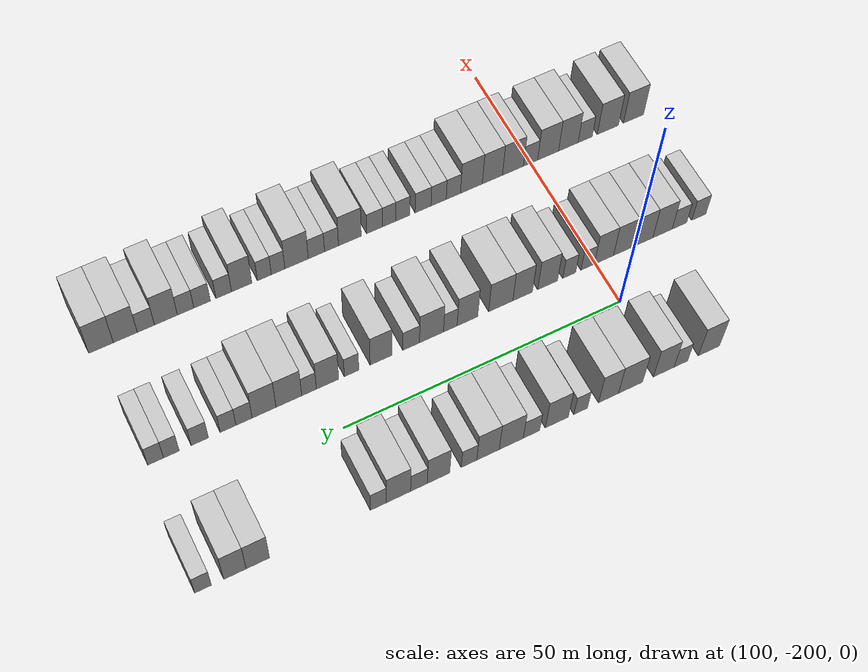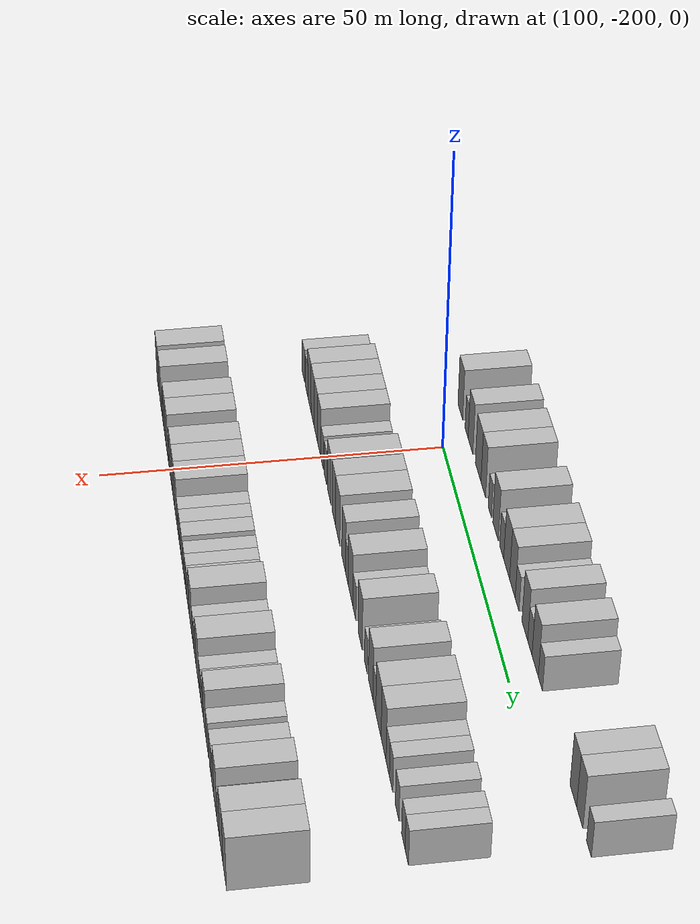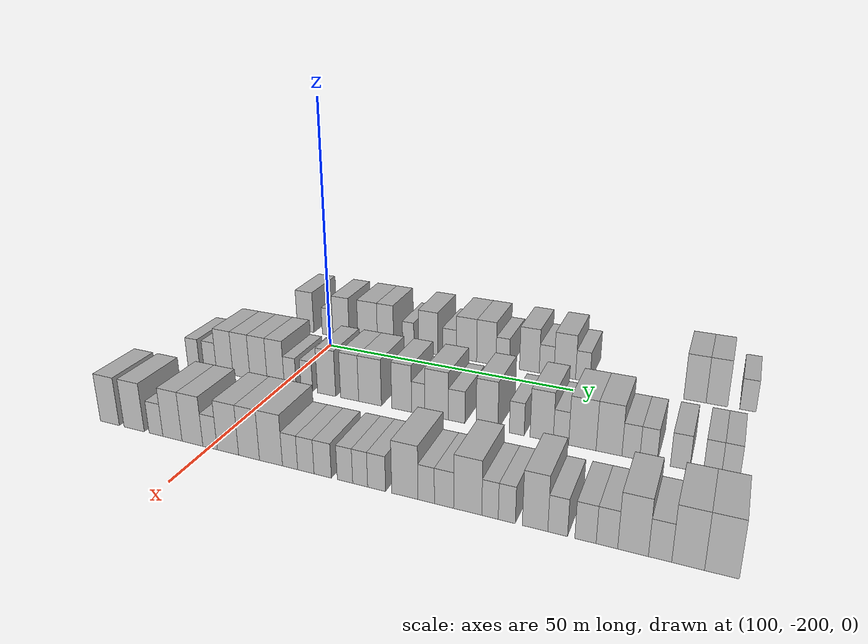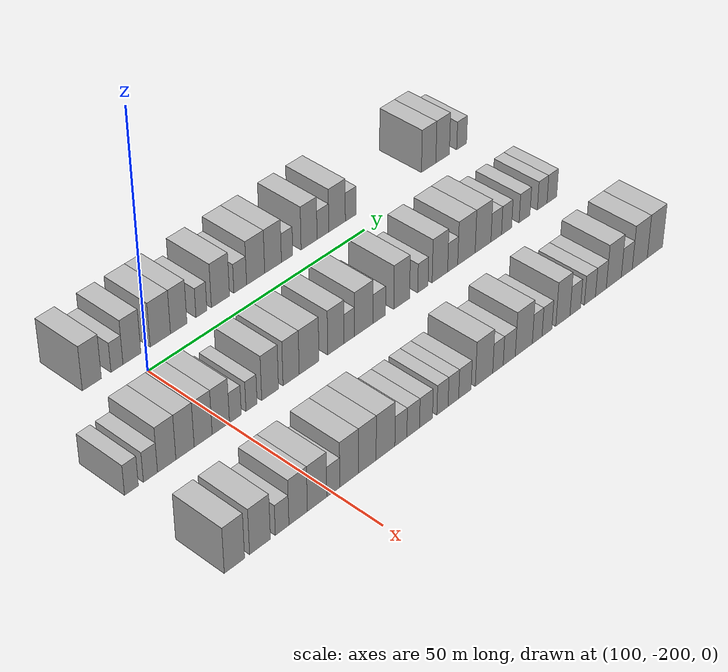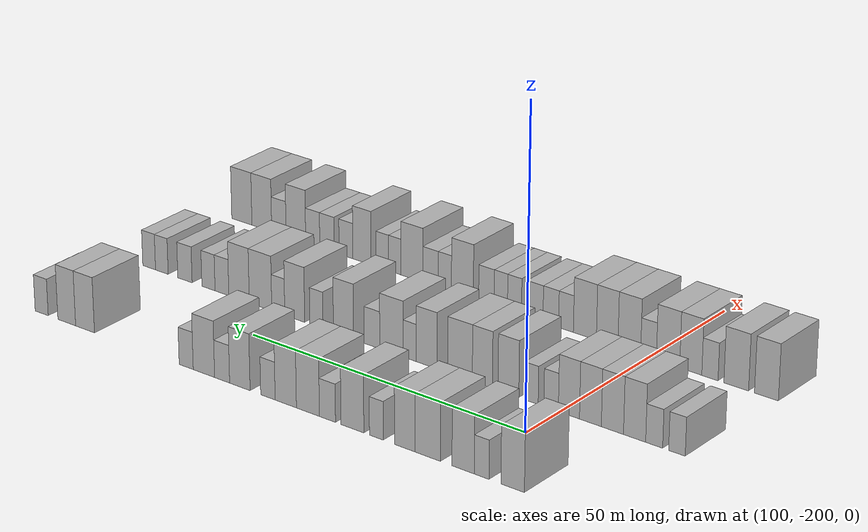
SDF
<sdf version="1.6">
 <world name="default">
  <model name="building_583">
   <static>1</static>
   <pose>91.0000 -208.1461 0 0.000000 0.000000 0.000000</pose>
   <link name="link">
    <pose>0 0 4.50 0 0 0</pose>
    <collision name="collision"><geometry><box><size>10.0000 3.9610 9.0000</size></box></geometry></collision>
    <visual name="visual">
     <cast_shadows>0</cast_shadows>
     <geometry><box><size>10.0000 3.9610 9.0000</size></box></geometry>
     <material>
      <script>
       <uri>model://HANNAS_wall/materials/scripts</uri>
       <uri>model://HANNAS_wall/materials/textures</uri>
       <name>vrc/HANNAS_wall</name>
      </script>
     </material>
    </visual>
   </link>
  </model>
  <model name="building_584">
   <static>1</static>
   <pose>91.0000 -202.9026 0 0.000000 0.000000 0.000000</pose>
   <link name="link">
    <pose>0 0 3.00 0 0 0</pose>
    <collision name="collision"><geometry><box><size>10.0000 2.5260 6.0000</size></box></geometry></collision>
    <visual name="visual">
     <cast_shadows>0</cast_shadows>
     <geometry><box><size>10.0000 2.5260 6.0000</size></box></geometry>
     <material>
      <script>
       <uri>model://HANNAS_wall/materials/scripts</uri>
       <uri>model://HANNAS_wall/materials/textures</uri>
       <name>vrc/HANNAS_wall</name>
      </script>
     </material>
    </visual>
   </link>
  </model>
  <model name="building_585">
   <static>1</static>
   <pose>91.0000 -199.7312 0 0.000000 0.000000 0.000000</pose>
   <link name="link">
    <pose>0 0 4.50 0 0 0</pose>
    <collision name="collision"><geometry><box><size>10.0000 3.8168 9.0000</size></box></geometry></collision>
    <visual name="visual">
     <cast_shadows>0</cast_shadows>
     <geometry><box><size>10.0000 3.8168 9.0000</size></box></geometry>
     <material>
      <script>
       <uri>model://HANNAS_wall/materials/scripts</uri>
       <uri>model://HANNAS_wall/materials/textures</uri>
       <name>vrc/HANNAS_wall</name>
      </script>
     </material>
    </visual>
   </link>
  </model>
  <model name="building_586">
   <static>1</static>
   <pose>91.0000 -193.6123 0 0.000000 0.000000 0.000000</pose>
   <link name="link">
    <pose>0 0 4.50 0 0 0</pose>
    <collision name="collision"><geometry><box><size>10.0000 4.4212 9.0000</size></box></geometry></collision>
    <visual name="visual">
     <cast_shadows>0</cast_shadows>
     <geometry><box><size>10.0000 4.4212 9.0000</size></box></geometry>
     <material>
      <script>
       <uri>model://HANNAS_wall/materials/scripts</uri>
       <uri>model://HANNAS_wall/materials/textures</uri>
       <name>vrc/HANNAS_wall</name>
      </script>
     </material>
    </visual>
   </link>
  </model>
  <model name="building_587">
   <static>1</static>
   <pose>91.0000 -189.5889 0 0.000000 0.000000 0.000000</pose>
   <link name="link">
    <pose>0 0 4.50 0 0 0</pose>
    <collision name="collision"><geometry><box><size>10.0000 3.6256 9.0000</size></box></geometry></collision>
    <visual name="visual">
     <cast_shadows>0</cast_shadows>
     <geometry><box><size>10.0000 3.6256 9.0000</size></box></geometry>
     <material>
      <script>
       <uri>model://HANNAS_wall/materials/scripts</uri>
       <uri>model://HANNAS_wall/materials/textures</uri>
       <name>vrc/HANNAS_wall</name>
      </script>
     </material>
    </visual>
   </link>
  </model>
  <model name="building_588">
   <static>1</static>
   <pose>91.0000 -184.5486 0 0.000000 0.000000 0.000000</pose>
   <link name="link">
    <pose>0 0 3.00 0 0 0</pose>
    <collision name="collision"><geometry><box><size>10.0000 2.4551 6.0000</size></box></geometry></collision>
    <visual name="visual">
     <cast_shadows>0</cast_shadows>
     <geometry><box><size>10.0000 2.4551 6.0000</size></box></geometry>
     <material>
      <script>
       <uri>model://HANNAS_wall/materials/scripts</uri>
       <uri>model://HANNAS_wall/materials/textures</uri>
       <name>vrc/HANNAS_wall</name>
      </script>
     </material>
    </visual>
   </link>
  </model>
  <model name="building_589">
   <static>1</static>
   <pose>91.0000 -180.2605 0 0.000000 0.000000 0.000000</pose>
   <link name="link">
    <pose>0 0 4.50 0 0 0</pose>
    <collision name="collision"><geometry><box><size>10.0000 4.1210 9.0000</size></box></geometry></collision>
    <visual name="visual">
     <cast_shadows>0</cast_shadows>
     <geometry><box><size>10.0000 4.1210 9.0000</size></box></geometry>
     <material>
      <script>
       <uri>model://HANNAS_wall/materials/scripts</uri>
       <uri>model://HANNAS_wall/materials/textures</uri>
       <name>vrc/HANNAS_wall</name>
      </script>
     </material>
    </visual>
   </link>
  </model>
  <model name="building_590">
   <static>1</static>
   <pose>91.0000 -175.7351 0 0.000000 0.000000 0.000000</pose>
   <link name="link">
    <pose>0 0 3.00 0 0 0</pose>
    <collision name="collision"><geometry><box><size>10.0000 2.9299 6.0000</size></box></geometry></collision>
    <visual name="visual">
     <cast_shadows>0</cast_shadows>
     <geometry><box><size>10.0000 2.9299 6.0000</size></box></geometry>
     <material>
      <script>
       <uri>model://HANNAS_wall/materials/scripts</uri>
       <uri>model://HANNAS_wall/materials/textures</uri>
       <name>vrc/HANNAS_wall</name>
      </script>
     </material>
    </visual>
   </link>
  </model>
  <model name="building_591">
   <static>1</static>
   <pose>91.0000 -172.1573 0 0.000000 0.000000 0.000000</pose>
   <link name="link">
    <pose>0 0 4.50 0 0 0</pose>
    <collision name="collision"><geometry><box><size>10.0000 4.2256 9.0000</size></box></geometry></collision>
    <visual name="visual">
     <cast_shadows>0</cast_shadows>
     <geometry><box><size>10.0000 4.2256 9.0000</size></box></geometry>
     <material>
      <script>
       <uri>model://HANNAS_wall/materials/scripts</uri>
       <uri>model://HANNAS_wall/materials/textures</uri>
       <name>vrc/HANNAS_wall</name>
      </script>
     </material>
    </visual>
   </link>
  </model>
  <model name="building_592">
   <static>1</static>
   <pose>91.0000 -168.0705 0 0.000000 0.000000 0.000000</pose>
   <link name="link">
    <pose>0 0 4.50 0 0 0</pose>
    <collision name="collision"><geometry><box><size>10.0000 3.9478 9.0000</size></box></geometry></collision>
    <visual name="visual">
     <cast_shadows>0</cast_shadows>
     <geometry><box><size>10.0000 3.9478 9.0000</size></box></geometry>
     <material>
      <script>
       <uri>model://HANNAS_wall/materials/scripts</uri>
       <uri>model://HANNAS_wall/materials/textures</uri>
       <name>vrc/HANNAS_wall</name>
      </script>
     </material>
    </visual>
   </link>
  </model>
  <model name="building_593">
   <static>1</static>
   <pose>91.0000 -164.7455 0 0.000000 0.000000 0.000000</pose>
   <link name="link">
    <pose>0 0 3.00 0 0 0</pose>
    <collision name="collision"><geometry><box><size>10.0000 2.7022 6.0000</size></box></geometry></collision>
    <visual name="visual">
     <cast_shadows>0</cast_shadows>
     <geometry><box><size>10.0000 2.7022 6.0000</size></box></geometry>
     <material>
      <script>
       <uri>model://HANNAS_wall/materials/scripts</uri>
       <uri>model://HANNAS_wall/materials/textures</uri>
       <name>vrc/HANNAS_wall</name>
      </script>
     </material>
    </visual>
   </link>
  </model>
  <model name="building_594">
   <static>1</static>
   <pose>91.0000 -159.4563 0 0.000000 0.000000 0.000000</pose>
   <link name="link">
    <pose>0 0 4.50 0 0 0</pose>
    <collision name="collision"><geometry><box><size>10.0000 3.8762 9.0000</size></box></geometry></collision>
    <visual name="visual">
     <cast_shadows>0</cast_shadows>
     <geometry><box><size>10.0000 3.8762 9.0000</size></box></geometry>
     <material>
      <script>
       <uri>model://HANNAS_wall/materials/scripts</uri>
       <uri>model://HANNAS_wall/materials/textures</uri>
       <name>vrc/HANNAS_wall</name>
      </script>
     </material>
    </visual>
   </link>
  </model>
  <model name="building_595">
   <static>1</static>
   <pose>91.0000 -156.0876 0 0.000000 0.000000 0.000000</pose>
   <link name="link">
    <pose>0 0 3.00 0 0 0</pose>
    <collision name="collision"><geometry><box><size>10.0000 2.8612 6.0000</size></box></geometry></collision>
    <visual name="visual">
     <cast_shadows>0</cast_shadows>
     <geometry><box><size>10.0000 2.8612 6.0000</size></box></geometry>
     <material>
      <script>
       <uri>model://HANNAS_wall/materials/scripts</uri>
       <uri>model://HANNAS_wall/materials/textures</uri>
       <name>vrc/HANNAS_wall</name>
      </script>
     </material>
    </visual>
   </link>
  </model>
  <model name="building_596">
   <static>1</static>
   <pose>91.0000 -152.5955 0 0.000000 0.000000 0.000000</pose>
   <link name="link">
    <pose>0 0 4.50 0 0 0</pose>
    <collision name="collision"><geometry><box><size>10.0000 4.1229 9.0000</size></box></geometry></collision>
    <visual name="visual">
     <cast_shadows>0</cast_shadows>
     <geometry><box><size>10.0000 4.1229 9.0000</size></box></geometry>
     <material>
      <script>
       <uri>model://HANNAS_wall/materials/scripts</uri>
       <uri>model://HANNAS_wall/materials/textures</uri>
       <name>vrc/HANNAS_wall</name>
      </script>
     </material>
    </visual>
   </link>
  </model>
  <model name="building_597">
   <static>1</static>
   <pose>91.0000 -149.1707 0 0.000000 0.000000 0.000000</pose>
   <link name="link">
    <pose>0 0 3.00 0 0 0</pose>
    <collision name="collision"><geometry><box><size>10.0000 2.7266 6.0000</size></box></geometry></collision>
    <visual name="visual">
     <cast_shadows>0</cast_shadows>
     <geometry><box><size>10.0000 2.7266 6.0000</size></box></geometry>
     <material>
      <script>
       <uri>model://HANNAS_wall/materials/scripts</uri>
       <uri>model://HANNAS_wall/materials/textures</uri>
       <name>vrc/HANNAS_wall</name>
      </script>
     </material>
    </visual>
   </link>
  </model>
  <model name="building_598">
   <static>1</static>
   <pose>91.0000 -129.0493 0 0.000000 0.000000 0.000000</pose>
   <link name="link">
    <pose>0 0 4.50 0 0 0</pose>
    <collision name="collision"><geometry><box><size>10.0000 3.8388 9.0000</size></box></geometry></collision>
    <visual name="visual">
     <cast_shadows>0</cast_shadows>
     <geometry><box><size>10.0000 3.8388 9.0000</size></box></geometry>
     <material>
      <script>
       <uri>model://HANNAS_wall/materials/scripts</uri>
       <uri>model://HANNAS_wall/materials/textures</uri>
       <name>vrc/HANNAS_wall</name>
      </script>
     </material>
    </visual>
   </link>
  </model>
  <model name="building_599">
   <static>1</static>
   <pose>91.0000 -125.3104 0 0.000000 0.000000 0.000000</pose>
   <link name="link">
    <pose>0 0 4.50 0 0 0</pose>
    <collision name="collision"><geometry><box><size>10.0000 3.6390 9.0000</size></box></geometry></collision>
    <visual name="visual">
     <cast_shadows>0</cast_shadows>
     <geometry><box><size>10.0000 3.6390 9.0000</size></box></geometry>
     <material>
      <script>
       <uri>model://HANNAS_wall/materials/scripts</uri>
       <uri>model://HANNAS_wall/materials/textures</uri>
       <name>vrc/HANNAS_wall</name>
      </script>
     </material>
    </visual>
   </link>
  </model>
  <model name="building_600">
   <static>1</static>
   <pose>91.0000 -120.1404 0 0.000000 0.000000 0.000000</pose>
   <link name="link">
    <pose>0 0 3.00 0 0 0</pose>
    <collision name="collision"><geometry><box><size>10.0000 2.7010 6.0000</size></box></geometry></collision>
    <visual name="visual">
     <cast_shadows>0</cast_shadows>
     <geometry><box><size>10.0000 2.7010 6.0000</size></box></geometry>
     <material>
      <script>
       <uri>model://HANNAS_wall/materials/scripts</uri>
       <uri>model://HANNAS_wall/materials/textures</uri>
       <name>vrc/HANNAS_wall</name>
      </script>
     </material>
    </visual>
   </link>
  </model>
  <model name="building_762">
   <static>1</static>
   <pose>113.0000 -219.8826 0 0.000000 0.000000 0.000000</pose>
   <link name="link">
    <pose>0 0 3.00 0 0 0</pose>
    <collision name="collision"><geometry><box><size>10.0000 2.7496 6.0000</size></box></geometry></collision>
    <visual name="visual">
     <cast_shadows>0</cast_shadows>
     <geometry><box><size>10.0000 2.7496 6.0000</size></box></geometry>
     <material>
      <script>
       <uri>model://HANNAS_wall/materials/scripts</uri>
       <uri>model://HANNAS_wall/materials/textures</uri>
       <name>vrc/HANNAS_wall</name>
      </script>
     </material>
    </visual>
   </link>
  </model>
  <model name="building_763">
   <static>1</static>
   <pose>113.0000 -216.0858 0 0.000000 0.000000 0.000000</pose>
   <link name="link">
    <pose>0 0 3.00 0 0 0</pose>
    <collision name="collision"><geometry><box><size>10.0000 2.8440 6.0000</size></box></geometry></collision>
    <visual name="visual">
     <cast_shadows>0</cast_shadows>
     <geometry><box><size>10.0000 2.8440 6.0000</size></box></geometry>
     <material>
      <script>
       <uri>model://HANNAS_wall/materials/scripts</uri>
       <uri>model://HANNAS_wall/materials/textures</uri>
       <name>vrc/HANNAS_wall</name>
      </script>
     </material>
    </visual>
   </link>
  </model>
  <model name="building_764">
   <static>1</static>
   <pose>113.0000 -212.7943 0 0.000000 0.000000 0.000000</pose>
   <link name="link">
    <pose>0 0 4.50 0 0 0</pose>
    <collision name="collision"><geometry><box><size>10.0000 3.7390 9.0000</size></box></geometry></collision>
    <visual name="visual">
     <cast_shadows>0</cast_shadows>
     <geometry><box><size>10.0000 3.7390 9.0000</size></box></geometry>
     <material>
      <script>
       <uri>model://HANNAS_wall/materials/scripts</uri>
       <uri>model://HANNAS_wall/materials/textures</uri>
       <name>vrc/HANNAS_wall</name>
      </script>
     </material>
    </visual>
   </link>
  </model>
  <model name="building_765">
   <static>1</static>
   <pose>113.0000 -209.0377 0 0.000000 0.000000 0.000000</pose>
   <link name="link">
    <pose>0 0 4.50 0 0 0</pose>
    <collision name="collision"><geometry><box><size>10.0000 3.7743 9.0000</size></box></geometry></collision>
    <visual name="visual">
     <cast_shadows>0</cast_shadows>
     <geometry><box><size>10.0000 3.7743 9.0000</size></box></geometry>
     <material>
      <script>
       <uri>model://HANNAS_wall/materials/scripts</uri>
       <uri>model://HANNAS_wall/materials/textures</uri>
       <name>vrc/HANNAS_wall</name>
      </script>
     </material>
    </visual>
   </link>
  </model>
  <model name="building_766">
   <static>1</static>
   <pose>113.0000 -205.2724 0 0.000000 0.000000 0.000000</pose>
   <link name="link">
    <pose>0 0 4.50 0 0 0</pose>
    <collision name="collision"><geometry><box><size>10.0000 3.7562 9.0000</size></box></geometry></collision>
    <visual name="visual">
     <cast_shadows>0</cast_shadows>
     <geometry><box><size>10.0000 3.7562 9.0000</size></box></geometry>
     <material>
      <script>
       <uri>model://HANNAS_wall/materials/scripts</uri>
       <uri>model://HANNAS_wall/materials/textures</uri>
       <name>vrc/HANNAS_wall</name>
      </script>
     </material>
    </visual>
   </link>
  </model>
  <model name="building_767">
   <static>1</static>
   <pose>113.0000 -201.5636 0 0.000000 0.000000 0.000000</pose>
   <link name="link">
    <pose>0 0 4.50 0 0 0</pose>
    <collision name="collision"><geometry><box><size>10.0000 3.6614 9.0000</size></box></geometry></collision>
    <visual name="visual">
     <cast_shadows>0</cast_shadows>
     <geometry><box><size>10.0000 3.6614 9.0000</size></box></geometry>
     <material>
      <script>
       <uri>model://HANNAS_wall/materials/scripts</uri>
       <uri>model://HANNAS_wall/materials/textures</uri>
       <name>vrc/HANNAS_wall</name>
      </script>
     </material>
    </visual>
   </link>
  </model>
  <model name="building_768">
   <static>1</static>
   <pose>113.0000 -198.4670 0 0.000000 0.000000 0.000000</pose>
   <link name="link">
    <pose>0 0 3.00 0 0 0</pose>
    <collision name="collision"><geometry><box><size>10.0000 2.5318 6.0000</size></box></geometry></collision>
    <visual name="visual">
     <cast_shadows>0</cast_shadows>
     <geometry><box><size>10.0000 2.5318 6.0000</size></box></geometry>
     <material>
      <script>
       <uri>model://HANNAS_wall/materials/scripts</uri>
       <uri>model://HANNAS_wall/materials/textures</uri>
       <name>vrc/HANNAS_wall</name>
      </script>
     </material>
    </visual>
   </link>
  </model>
  <model name="building_769">
   <static>1</static>
   <pose>113.0000 -194.9916 0 0.000000 0.000000 0.000000</pose>
   <link name="link">
    <pose>0 0 3.00 0 0 0</pose>
    <collision name="collision"><geometry><box><size>10.0000 2.4190 6.0000</size></box></geometry></collision>
    <visual name="visual">
     <cast_shadows>0</cast_shadows>
     <geometry><box><size>10.0000 2.4190 6.0000</size></box></geometry>
     <material>
      <script>
       <uri>model://HANNAS_wall/materials/scripts</uri>
       <uri>model://HANNAS_wall/materials/textures</uri>
       <name>vrc/HANNAS_wall</name>
      </script>
     </material>
    </visual>
   </link>
  </model>
  <model name="building_770">
   <static>1</static>
   <pose>113.0000 -190.9341 0 0.000000 0.000000 0.000000</pose>
   <link name="link">
    <pose>0 0 4.50 0 0 0</pose>
    <collision name="collision"><geometry><box><size>10.0000 3.6961 9.0000</size></box></geometry></collision>
    <visual name="visual">
     <cast_shadows>0</cast_shadows>
     <geometry><box><size>10.0000 3.6961 9.0000</size></box></geometry>
     <material>
      <script>
       <uri>model://HANNAS_wall/materials/scripts</uri>
       <uri>model://HANNAS_wall/materials/textures</uri>
       <name>vrc/HANNAS_wall</name>
      </script>
     </material>
    </visual>
   </link>
  </model>
  <model name="building_771">
   <static>1</static>
   <pose>113.0000 -186.2801 0 0.000000 0.000000 0.000000</pose>
   <link name="link">
    <pose>0 0 4.50 0 0 0</pose>
    <collision name="collision"><geometry><box><size>10.0000 3.6117 9.0000</size></box></geometry></collision>
    <visual name="visual">
     <cast_shadows>0</cast_shadows>
     <geometry><box><size>10.0000 3.6117 9.0000</size></box></geometry>
     <material>
      <script>
       <uri>model://HANNAS_wall/materials/scripts</uri>
       <uri>model://HANNAS_wall/materials/textures</uri>
       <name>vrc/HANNAS_wall</name>
      </script>
     </material>
    </visual>
   </link>
  </model>
  <model name="building_772">
   <static>1</static>
   <pose>113.0000 -182.2433 0 0.000000 0.000000 0.000000</pose>
   <link name="link">
    <pose>0 0 4.50 0 0 0</pose>
    <collision name="collision"><geometry><box><size>10.0000 4.4620 9.0000</size></box></geometry></collision>
    <visual name="visual">
     <cast_shadows>0</cast_shadows>
     <geometry><box><size>10.0000 4.4620 9.0000</size></box></geometry>
     <material>
      <script>
       <uri>model://HANNAS_wall/materials/scripts</uri>
       <uri>model://HANNAS_wall/materials/textures</uri>
       <name>vrc/HANNAS_wall</name>
      </script>
     </material>
    </visual>
   </link>
  </model>
  <model name="building_773">
   <static>1</static>
   <pose>113.0000 -176.1246 0 0.000000 0.000000 0.000000</pose>
   <link name="link">
    <pose>0 0 4.50 0 0 0</pose>
    <collision name="collision"><geometry><box><size>10.0000 3.7753 9.0000</size></box></geometry></collision>
    <visual name="visual">
     <cast_shadows>0</cast_shadows>
     <geometry><box><size>10.0000 3.7753 9.0000</size></box></geometry>
     <material>
      <script>
       <uri>model://HANNAS_wall/materials/scripts</uri>
       <uri>model://HANNAS_wall/materials/textures</uri>
       <name>vrc/HANNAS_wall</name>
      </script>
     </material>
    </visual>
   </link>
  </model>
  <model name="building_774">
   <static>1</static>
   <pose>113.0000 -173.0062 0 0.000000 0.000000 0.000000</pose>
   <link name="link">
    <pose>0 0 3.00 0 0 0</pose>
    <collision name="collision"><geometry><box><size>10.0000 2.4615 6.0000</size></box></geometry></collision>
    <visual name="visual">
     <cast_shadows>0</cast_shadows>
     <geometry><box><size>10.0000 2.4615 6.0000</size></box></geometry>
     <material>
      <script>
       <uri>model://HANNAS_wall/materials/scripts</uri>
       <uri>model://HANNAS_wall/materials/textures</uri>
       <name>vrc/HANNAS_wall</name>
      </script>
     </material>
    </visual>
   </link>
  </model>
  <model name="building_775">
   <static>1</static>
   <pose>113.0000 -169.5960 0 0.000000 0.000000 0.000000</pose>
   <link name="link">
    <pose>0 0 4.50 0 0 0</pose>
    <collision name="collision"><geometry><box><size>10.0000 4.3589 9.0000</size></box></geometry></collision>
    <visual name="visual">
     <cast_shadows>0</cast_shadows>
     <geometry><box><size>10.0000 4.3589 9.0000</size></box></geometry>
     <material>
      <script>
       <uri>model://HANNAS_wall/materials/scripts</uri>
       <uri>model://HANNAS_wall/materials/textures</uri>
       <name>vrc/HANNAS_wall</name>
      </script>
     </material>
    </visual>
   </link>
  </model>
  <model name="building_776">
   <static>1</static>
   <pose>113.0000 -165.9330 0 0.000000 0.000000 0.000000</pose>
   <link name="link">
    <pose>0 0 3.00 0 0 0</pose>
    <collision name="collision"><geometry><box><size>10.0000 2.9671 6.0000</size></box></geometry></collision>
    <visual name="visual">
     <cast_shadows>0</cast_shadows>
     <geometry><box><size>10.0000 2.9671 6.0000</size></box></geometry>
     <material>
      <script>
       <uri>model://HANNAS_wall/materials/scripts</uri>
       <uri>model://HANNAS_wall/materials/textures</uri>
       <name>vrc/HANNAS_wall</name>
      </script>
     </material>
    </visual>
   </link>
  </model>
  <model name="building_777">
   <static>1</static>
   <pose>113.0000 -160.5317 0 0.000000 0.000000 0.000000</pose>
   <link name="link">
    <pose>0 0 4.50 0 0 0</pose>
    <collision name="collision"><geometry><box><size>10.0000 3.8354 9.0000</size></box></geometry></collision>
    <visual name="visual">
     <cast_shadows>0</cast_shadows>
     <geometry><box><size>10.0000 3.8354 9.0000</size></box></geometry>
     <material>
      <script>
       <uri>model://HANNAS_wall/materials/scripts</uri>
       <uri>model://HANNAS_wall/materials/textures</uri>
       <name>vrc/HANNAS_wall</name>
      </script>
     </material>
    </visual>
   </link>
  </model>
  <model name="building_778">
   <static>1</static>
   <pose>113.0000 -155.3377 0 0.000000 0.000000 0.000000</pose>
   <link name="link">
    <pose>0 0 3.00 0 0 0</pose>
    <collision name="collision"><geometry><box><size>10.0000 2.5526 6.0000</size></box></geometry></collision>
    <visual name="visual">
     <cast_shadows>0</cast_shadows>
     <geometry><box><size>10.0000 2.5526 6.0000</size></box></geometry>
     <material>
      <script>
       <uri>model://HANNAS_wall/materials/scripts</uri>
       <uri>model://HANNAS_wall/materials/textures</uri>
       <name>vrc/HANNAS_wall</name>
      </script>
     </material>
    </visual>
   </link>
  </model>
  <model name="building_779">
   <static>1</static>
   <pose>113.0000 -151.1146 0 0.000000 0.000000 0.000000</pose>
   <link name="link">
    <pose>0 0 4.50 0 0 0</pose>
    <collision name="collision"><geometry><box><size>10.0000 3.8935 9.0000</size></box></geometry></collision>
    <visual name="visual">
     <cast_shadows>0</cast_shadows>
     <geometry><box><size>10.0000 3.8935 9.0000</size></box></geometry>
     <material>
      <script>
       <uri>model://HANNAS_wall/materials/scripts</uri>
       <uri>model://HANNAS_wall/materials/textures</uri>
       <name>vrc/HANNAS_wall</name>
      </script>
     </material>
    </visual>
   </link>
  </model>
  <model name="building_780">
   <static>1</static>
   <pose>113.0000 -147.8894 0 0.000000 0.000000 0.000000</pose>
   <link name="link">
    <pose>0 0 3.00 0 0 0</pose>
    <collision name="collision"><geometry><box><size>10.0000 2.5570 6.0000</size></box></geometry></collision>
    <visual name="visual">
     <cast_shadows>0</cast_shadows>
     <geometry><box><size>10.0000 2.5570 6.0000</size></box></geometry>
     <material>
      <script>
       <uri>model://HANNAS_wall/materials/scripts</uri>
       <uri>model://HANNAS_wall/materials/textures</uri>
       <name>vrc/HANNAS_wall</name>
      </script>
     </material>
    </visual>
   </link>
  </model>
  <model name="building_781">
   <static>1</static>
   <pose>113.0000 -144.3837 0 0.000000 0.000000 0.000000</pose>
   <link name="link">
    <pose>0 0 4.50 0 0 0</pose>
    <collision name="collision"><geometry><box><size>10.0000 4.4543 9.0000</size></box></geometry></collision>
    <visual name="visual">
     <cast_shadows>0</cast_shadows>
     <geometry><box><size>10.0000 4.4543 9.0000</size></box></geometry>
     <material>
      <script>
       <uri>model://HANNAS_wall/materials/scripts</uri>
       <uri>model://HANNAS_wall/materials/textures</uri>
       <name>vrc/HANNAS_wall</name>
      </script>
     </material>
    </visual>
   </link>
  </model>
  <model name="building_782">
   <static>1</static>
   <pose>113.0000 -140.1055 0 0.000000 0.000000 0.000000</pose>
   <link name="link">
    <pose>0 0 4.50 0 0 0</pose>
    <collision name="collision"><geometry><box><size>10.0000 4.1021 9.0000</size></box></geometry></collision>
    <visual name="visual">
     <cast_shadows>0</cast_shadows>
     <geometry><box><size>10.0000 4.1021 9.0000</size></box></geometry>
     <material>
      <script>
       <uri>model://HANNAS_wall/materials/scripts</uri>
       <uri>model://HANNAS_wall/materials/textures</uri>
       <name>vrc/HANNAS_wall</name>
      </script>
     </material>
    </visual>
   </link>
  </model>
  <model name="building_783">
   <static>1</static>
   <pose>113.0000 -136.6662 0 0.000000 0.000000 0.000000</pose>
   <link name="link">
    <pose>0 0 3.00 0 0 0</pose>
    <collision name="collision"><geometry><box><size>10.0000 2.7765 6.0000</size></box></geometry></collision>
    <visual name="visual">
     <cast_shadows>0</cast_shadows>
     <geometry><box><size>10.0000 2.7765 6.0000</size></box></geometry>
     <material>
      <script>
       <uri>model://HANNAS_wall/materials/scripts</uri>
       <uri>model://HANNAS_wall/materials/textures</uri>
       <name>vrc/HANNAS_wall</name>
      </script>
     </material>
    </visual>
   </link>
  </model>
  <model name="building_784">
   <static>1</static>
   <pose>113.0000 -133.9412 0 0.000000 0.000000 0.000000</pose>
   <link name="link">
    <pose>0 0 3.00 0 0 0</pose>
    <collision name="collision"><geometry><box><size>10.0000 2.6736 6.0000</size></box></geometry></collision>
    <visual name="visual">
     <cast_shadows>0</cast_shadows>
     <geometry><box><size>10.0000 2.6736 6.0000</size></box></geometry>
     <material>
      <script>
       <uri>model://HANNAS_wall/materials/scripts</uri>
       <uri>model://HANNAS_wall/materials/textures</uri>
       <name>vrc/HANNAS_wall</name>
      </script>
     </material>
    </visual>
   </link>
  </model>
  <model name="building_785">
   <static>1</static>
   <pose>113.0000 -129.1426 0 0.000000 0.000000 0.000000</pose>
   <link name="link">
    <pose>0 0 3.00 0 0 0</pose>
    <collision name="collision"><geometry><box><size>10.0000 2.9236 6.0000</size></box></geometry></collision>
    <visual name="visual">
     <cast_shadows>0</cast_shadows>
     <geometry><box><size>10.0000 2.9236 6.0000</size></box></geometry>
     <material>
      <script>
       <uri>model://HANNAS_wall/materials/scripts</uri>
       <uri>model://HANNAS_wall/materials/textures</uri>
       <name>vrc/HANNAS_wall</name>
      </script>
     </material>
    </visual>
   </link>
  </model>
  <model name="building_786">
   <static>1</static>
   <pose>113.0000 -124.3687 0 0.000000 0.000000 0.000000</pose>
   <link name="link">
    <pose>0 0 3.00 0 0 0</pose>
    <collision name="collision"><geometry><box><size>10.0000 2.6242 6.0000</size></box></geometry></collision>
    <visual name="visual">
     <cast_shadows>0</cast_shadows>
     <geometry><box><size>10.0000 2.6242 6.0000</size></box></geometry>
     <material>
      <script>
       <uri>model://HANNAS_wall/materials/scripts</uri>
       <uri>model://HANNAS_wall/materials/textures</uri>
       <name>vrc/HANNAS_wall</name>
      </script>
     </material>
    </visual>
   </link>
  </model>
  <model name="building_787">
   <static>1</static>
   <pose>113.0000 -121.7307 0 0.000000 0.000000 0.000000</pose>
   <link name="link">
    <pose>0 0 3.00 0 0 0</pose>
    <collision name="collision"><geometry><box><size>10.0000 2.6518 6.0000</size></box></geometry></collision>
    <visual name="visual">
     <cast_shadows>0</cast_shadows>
     <geometry><box><size>10.0000 2.6518 6.0000</size></box></geometry>
     <material>
      <script>
       <uri>model://HANNAS_wall/materials/scripts</uri>
       <uri>model://HANNAS_wall/materials/textures</uri>
       <name>vrc/HANNAS_wall</name>
      </script>
     </material>
    </visual>
   </link>
  </model>
  <model name="building_960">
   <static>1</static>
   <pose>135.0000 -220.2658 0 0.000000 0.000000 0.000000</pose>
   <link name="link">
    <pose>0 0 4.50 0 0 0</pose>
    <collision name="collision"><geometry><box><size>10.0000 4.0299 9.0000</size></box></geometry></collision>
    <visual name="visual">
     <cast_shadows>0</cast_shadows>
     <geometry><box><size>10.0000 4.0299 9.0000</size></box></geometry>
     <material>
      <script>
       <uri>model://HANNAS_wall/materials/scripts</uri>
       <uri>model://HANNAS_wall/materials/textures</uri>
       <name>vrc/HANNAS_wall</name>
      </script>
     </material>
    </visual>
   </link>
  </model>
  <model name="building_961">
   <static>1</static>
   <pose>135.0000 -215.1464 0 0.000000 0.000000 0.000000</pose>
   <link name="link">
    <pose>0 0 4.50 0 0 0</pose>
    <collision name="collision"><geometry><box><size>10.0000 4.2090 9.0000</size></box></geometry></collision>
    <visual name="visual">
     <cast_shadows>0</cast_shadows>
     <geometry><box><size>10.0000 4.2090 9.0000</size></box></geometry>
     <material>
      <script>
       <uri>model://HANNAS_wall/materials/scripts</uri>
       <uri>model://HANNAS_wall/materials/textures</uri>
       <name>vrc/HANNAS_wall</name>
      </script>
     </material>
    </visual>
   </link>
  </model>
  <model name="building_962">
   <static>1</static>
   <pose>135.0000 -210.6425 0 0.000000 0.000000 0.000000</pose>
   <link name="link">
    <pose>0 0 3.00 0 0 0</pose>
    <collision name="collision"><geometry><box><size>10.0000 2.7986 6.0000</size></box></geometry></collision>
    <visual name="visual">
     <cast_shadows>0</cast_shadows>
     <geometry><box><size>10.0000 2.7986 6.0000</size></box></geometry>
     <material>
      <script>
       <uri>model://HANNAS_wall/materials/scripts</uri>
       <uri>model://HANNAS_wall/materials/textures</uri>
       <name>vrc/HANNAS_wall</name>
      </script>
     </material>
    </visual>
   </link>
  </model>
  <model name="building_963">
   <static>1</static>
   <pose>135.0000 -207.3220 0 0.000000 0.000000 0.000000</pose>
   <link name="link">
    <pose>0 0 4.50 0 0 0</pose>
    <collision name="collision"><geometry><box><size>10.0000 3.8425 9.0000</size></box></geometry></collision>
    <visual name="visual">
     <cast_shadows>0</cast_shadows>
     <geometry><box><size>10.0000 3.8425 9.0000</size></box></geometry>
     <material>
      <script>
       <uri>model://HANNAS_wall/materials/scripts</uri>
       <uri>model://HANNAS_wall/materials/textures</uri>
       <name>vrc/HANNAS_wall</name>
      </script>
     </material>
    </visual>
   </link>
  </model>
  <model name="building_964">
   <static>1</static>
   <pose>135.0000 -203.3552 0 0.000000 0.000000 0.000000</pose>
   <link name="link">
    <pose>0 0 4.50 0 0 0</pose>
    <collision name="collision"><geometry><box><size>10.0000 4.0910 9.0000</size></box></geometry></collision>
    <visual name="visual">
     <cast_shadows>0</cast_shadows>
     <geometry><box><size>10.0000 4.0910 9.0000</size></box></geometry>
     <material>
      <script>
       <uri>model://HANNAS_wall/materials/scripts</uri>
       <uri>model://HANNAS_wall/materials/textures</uri>
       <name>vrc/HANNAS_wall</name>
      </script>
     </material>
    </visual>
   </link>
  </model>
  <model name="building_965">
   <static>1</static>
   <pose>135.0000 -199.9238 0 0.000000 0.000000 0.000000</pose>
   <link name="link">
    <pose>0 0 3.00 0 0 0</pose>
    <collision name="collision"><geometry><box><size>10.0000 2.7718 6.0000</size></box></geometry></collision>
    <visual name="visual">
     <cast_shadows>0</cast_shadows>
     <geometry><box><size>10.0000 2.7718 6.0000</size></box></geometry>
     <material>
      <script>
       <uri>model://HANNAS_wall/materials/scripts</uri>
       <uri>model://HANNAS_wall/materials/textures</uri>
       <name>vrc/HANNAS_wall</name>
      </script>
     </material>
    </visual>
   </link>
  </model>
  <model name="building_966">
   <static>1</static>
   <pose>135.0000 -196.5141 0 0.000000 0.000000 0.000000</pose>
   <link name="link">
    <pose>0 0 4.50 0 0 0</pose>
    <collision name="collision"><geometry><box><size>10.0000 4.0476 9.0000</size></box></geometry></collision>
    <visual name="visual">
     <cast_shadows>0</cast_shadows>
     <geometry><box><size>10.0000 4.0476 9.0000</size></box></geometry>
     <material>
      <script>
       <uri>model://HANNAS_wall/materials/scripts</uri>
       <uri>model://HANNAS_wall/materials/textures</uri>
       <name>vrc/HANNAS_wall</name>
      </script>
     </material>
    </visual>
   </link>
  </model>
  <model name="building_967">
   <static>1</static>
   <pose>135.0000 -192.5563 0 0.000000 0.000000 0.000000</pose>
   <link name="link">
    <pose>0 0 4.50 0 0 0</pose>
    <collision name="collision"><geometry><box><size>10.0000 3.8681 9.0000</size></box></geometry></collision>
    <visual name="visual">
     <cast_shadows>0</cast_shadows>
     <geometry><box><size>10.0000 3.8681 9.0000</size></box></geometry>
     <material>
      <script>
       <uri>model://HANNAS_wall/materials/scripts</uri>
       <uri>model://HANNAS_wall/materials/textures</uri>
       <name>vrc/HANNAS_wall</name>
      </script>
     </material>
    </visual>
   </link>
  </model>
  <model name="building_968">
   <static>1</static>
   <pose>135.0000 -188.5361 0 0.000000 0.000000 0.000000</pose>
   <link name="link">
    <pose>0 0 4.50 0 0 0</pose>
    <collision name="collision"><geometry><box><size>10.0000 4.1724 9.0000</size></box></geometry></collision>
    <visual name="visual">
     <cast_shadows>0</cast_shadows>
     <geometry><box><size>10.0000 4.1724 9.0000</size></box></geometry>
     <material>
      <script>
       <uri>model://HANNAS_wall/materials/scripts</uri>
       <uri>model://HANNAS_wall/materials/textures</uri>
       <name>vrc/HANNAS_wall</name>
      </script>
     </material>
    </visual>
   </link>
  </model>
  <model name="building_969">
   <static>1</static>
   <pose>135.0000 -185.0982 0 0.000000 0.000000 0.000000</pose>
   <link name="link">
    <pose>0 0 3.00 0 0 0</pose>
    <collision name="collision"><geometry><box><size>10.0000 2.7032 6.0000</size></box></geometry></collision>
    <visual name="visual">
     <cast_shadows>0</cast_shadows>
     <geometry><box><size>10.0000 2.7032 6.0000</size></box></geometry>
     <material>
      <script>
       <uri>model://HANNAS_wall/materials/scripts</uri>
       <uri>model://HANNAS_wall/materials/textures</uri>
       <name>vrc/HANNAS_wall</name>
      </script>
     </material>
    </visual>
   </link>
  </model>
  <model name="building_970">
   <static>1</static>
   <pose>135.0000 -182.3100 0 0.000000 0.000000 0.000000</pose>
   <link name="link">
    <pose>0 0 3.00 0 0 0</pose>
    <collision name="collision"><geometry><box><size>10.0000 2.8731 6.0000</size></box></geometry></collision>
    <visual name="visual">
     <cast_shadows>0</cast_shadows>
     <geometry><box><size>10.0000 2.8731 6.0000</size></box></geometry>
     <material>
      <script>
       <uri>model://HANNAS_wall/materials/scripts</uri>
       <uri>model://HANNAS_wall/materials/textures</uri>
       <name>vrc/HANNAS_wall</name>
      </script>
     </material>
    </visual>
   </link>
  </model>
  <model name="building_971">
   <static>1</static>
   <pose>135.0000 -179.3762 0 0.000000 0.000000 0.000000</pose>
   <link name="link">
    <pose>0 0 3.00 0 0 0</pose>
    <collision name="collision"><geometry><box><size>10.0000 2.9945 6.0000</size></box></geometry></collision>
    <visual name="visual">
     <cast_shadows>0</cast_shadows>
     <geometry><box><size>10.0000 2.9945 6.0000</size></box></geometry>
     <material>
      <script>
       <uri>model://HANNAS_wall/materials/scripts</uri>
       <uri>model://HANNAS_wall/materials/textures</uri>
       <name>vrc/HANNAS_wall</name>
      </script>
     </material>
    </visual>
   </link>
  </model>
  <model name="building_972">
   <static>1</static>
   <pose>135.0000 -175.5730 0 0.000000 0.000000 0.000000</pose>
   <link name="link">
    <pose>0 0 3.00 0 0 0</pose>
    <collision name="collision"><geometry><box><size>10.0000 2.6119 6.0000</size></box></geometry></collision>
    <visual name="visual">
     <cast_shadows>0</cast_shadows>
     <geometry><box><size>10.0000 2.6119 6.0000</size></box></geometry>
     <material>
      <script>
       <uri>model://HANNAS_wall/materials/scripts</uri>
       <uri>model://HANNAS_wall/materials/textures</uri>
       <name>vrc/HANNAS_wall</name>
      </script>
     </material>
    </visual>
   </link>
  </model>
  <model name="building_973">
   <static>1</static>
   <pose>135.0000 -173.0243 0 0.000000 0.000000 0.000000</pose>
   <link name="link">
    <pose>0 0 3.00 0 0 0</pose>
    <collision name="collision"><geometry><box><size>10.0000 2.4856 6.0000</size></box></geometry></collision>
    <visual name="visual">
     <cast_shadows>0</cast_shadows>
     <geometry><box><size>10.0000 2.4856 6.0000</size></box></geometry>
     <material>
      <script>
       <uri>model://HANNAS_wall/materials/scripts</uri>
       <uri>model://HANNAS_wall/materials/textures</uri>
       <name>vrc/HANNAS_wall</name>
      </script>
     </material>
    </visual>
   </link>
  </model>
  <model name="building_974">
   <static>1</static>
   <pose>135.0000 -170.3064 0 0.000000 0.000000 0.000000</pose>
   <link name="link">
    <pose>0 0 3.00 0 0 0</pose>
    <collision name="collision"><geometry><box><size>10.0000 2.9501 6.0000</size></box></geometry></collision>
    <visual name="visual">
     <cast_shadows>0</cast_shadows>
     <geometry><box><size>10.0000 2.9501 6.0000</size></box></geometry>
     <material>
      <script>
       <uri>model://HANNAS_wall/materials/scripts</uri>
       <uri>model://HANNAS_wall/materials/textures</uri>
       <name>vrc/HANNAS_wall</name>
      </script>
     </material>
    </visual>
   </link>
  </model>
  <model name="building_975">
   <static>1</static>
   <pose>135.0000 -165.7347 0 0.000000 0.000000 0.000000</pose>
   <link name="link">
    <pose>0 0 4.50 0 0 0</pose>
    <collision name="collision"><geometry><box><size>10.0000 4.1933 9.0000</size></box></geometry></collision>
    <visual name="visual">
     <cast_shadows>0</cast_shadows>
     <geometry><box><size>10.0000 4.1933 9.0000</size></box></geometry>
     <material>
      <script>
       <uri>model://HANNAS_wall/materials/scripts</uri>
       <uri>model://HANNAS_wall/materials/textures</uri>
       <name>vrc/HANNAS_wall</name>
      </script>
     </material>
    </visual>
   </link>
  </model>
  <model name="building_976">
   <static>1</static>
   <pose>135.0000 -162.3605 0 0.000000 0.000000 0.000000</pose>
   <link name="link">
    <pose>0 0 3.00 0 0 0</pose>
    <collision name="collision"><geometry><box><size>10.0000 2.5552 6.0000</size></box></geometry></collision>
    <visual name="visual">
     <cast_shadows>0</cast_shadows>
     <geometry><box><size>10.0000 2.5552 6.0000</size></box></geometry>
     <material>
      <script>
       <uri>model://HANNAS_wall/materials/scripts</uri>
       <uri>model://HANNAS_wall/materials/textures</uri>
       <name>vrc/HANNAS_wall</name>
      </script>
     </material>
    </visual>
   </link>
  </model>
  <model name="building_977">
   <static>1</static>
   <pose>135.0000 -159.5984 0 0.000000 0.000000 0.000000</pose>
   <link name="link">
    <pose>0 0 3.00 0 0 0</pose>
    <collision name="collision"><geometry><box><size>10.0000 2.9691 6.0000</size></box></geometry></collision>
    <visual name="visual">
     <cast_shadows>0</cast_shadows>
     <geometry><box><size>10.0000 2.9691 6.0000</size></box></geometry>
     <material>
      <script>
       <uri>model://HANNAS_wall/materials/scripts</uri>
       <uri>model://HANNAS_wall/materials/textures</uri>
       <name>vrc/HANNAS_wall</name>
      </script>
     </material>
    </visual>
   </link>
  </model>
  <model name="building_978">
   <static>1</static>
   <pose>135.0000 -155.9909 0 0.000000 0.000000 0.000000</pose>
   <link name="link">
    <pose>0 0 4.50 0 0 0</pose>
    <collision name="collision"><geometry><box><size>10.0000 4.2458 9.0000</size></box></geometry></collision>
    <visual name="visual">
     <cast_shadows>0</cast_shadows>
     <geometry><box><size>10.0000 4.2458 9.0000</size></box></geometry>
     <material>
      <script>
       <uri>model://HANNAS_wall/materials/scripts</uri>
       <uri>model://HANNAS_wall/materials/textures</uri>
       <name>vrc/HANNAS_wall</name>
      </script>
     </material>
    </visual>
   </link>
  </model>
  <model name="building_979">
   <static>1</static>
   <pose>135.0000 -152.6459 0 0.000000 0.000000 0.000000</pose>
   <link name="link">
    <pose>0 0 3.00 0 0 0</pose>
    <collision name="collision"><geometry><box><size>10.0000 2.4441 6.0000</size></box></geometry></collision>
    <visual name="visual">
     <cast_shadows>0</cast_shadows>
     <geometry><box><size>10.0000 2.4441 6.0000</size></box></geometry>
     <material>
      <script>
       <uri>model://HANNAS_wall/materials/scripts</uri>
       <uri>model://HANNAS_wall/materials/textures</uri>
       <name>vrc/HANNAS_wall</name>
      </script>
     </material>
    </visual>
   </link>
  </model>
  <model name="building_980">
   <static>1</static>
   <pose>135.0000 -150.1778 0 0.000000 0.000000 0.000000</pose>
   <link name="link">
    <pose>0 0 3.00 0 0 0</pose>
    <collision name="collision"><geometry><box><size>10.0000 2.4922 6.0000</size></box></geometry></collision>
    <visual name="visual">
     <cast_shadows>0</cast_shadows>
     <geometry><box><size>10.0000 2.4922 6.0000</size></box></geometry>
     <material>
      <script>
       <uri>model://HANNAS_wall/materials/scripts</uri>
       <uri>model://HANNAS_wall/materials/textures</uri>
       <name>vrc/HANNAS_wall</name>
      </script>
     </material>
    </visual>
   </link>
  </model>
  <model name="building_981">
   <static>1</static>
   <pose>135.0000 -146.1152 0 0.000000 0.000000 0.000000</pose>
   <link name="link">
    <pose>0 0 4.50 0 0 0</pose>
    <collision name="collision"><geometry><box><size>10.0000 3.6331 9.0000</size></box></geometry></collision>
    <visual name="visual">
     <cast_shadows>0</cast_shadows>
     <geometry><box><size>10.0000 3.6331 9.0000</size></box></geometry>
     <material>
      <script>
       <uri>model://HANNAS_wall/materials/scripts</uri>
       <uri>model://HANNAS_wall/materials/textures</uri>
       <name>vrc/HANNAS_wall</name>
      </script>
     </material>
    </visual>
   </link>
  </model>
  <model name="building_982">
   <static>1</static>
   <pose>135.0000 -142.9172 0 0.000000 0.000000 0.000000</pose>
   <link name="link">
    <pose>0 0 3.00 0 0 0</pose>
    <collision name="collision"><geometry><box><size>10.0000 2.7627 6.0000</size></box></geometry></collision>
    <visual name="visual">
     <cast_shadows>0</cast_shadows>
     <geometry><box><size>10.0000 2.7627 6.0000</size></box></geometry>
     <material>
      <script>
       <uri>model://HANNAS_wall/materials/scripts</uri>
       <uri>model://HANNAS_wall/materials/textures</uri>
       <name>vrc/HANNAS_wall</name>
      </script>
     </material>
    </visual>
   </link>
  </model>
  <model name="building_983">
   <static>1</static>
   <pose>135.0000 -139.0829 0 0.000000 0.000000 0.000000</pose>
   <link name="link">
    <pose>0 0 3.00 0 0 0</pose>
    <collision name="collision"><geometry><box><size>10.0000 2.9058 6.0000</size></box></geometry></collision>
    <visual name="visual">
     <cast_shadows>0</cast_shadows>
     <geometry><box><size>10.0000 2.9058 6.0000</size></box></geometry>
     <material>
      <script>
       <uri>model://HANNAS_wall/materials/scripts</uri>
       <uri>model://HANNAS_wall/materials/textures</uri>
       <name>vrc/HANNAS_wall</name>
      </script>
     </material>
    </visual>
   </link>
  </model>
  <model name="building_984">
   <static>1</static>
   <pose>135.0000 -136.1896 0 0.000000 0.000000 0.000000</pose>
   <link name="link">
    <pose>0 0 3.00 0 0 0</pose>
    <collision name="collision"><geometry><box><size>10.0000 2.8809 6.0000</size></box></geometry></collision>
    <visual name="visual">
     <cast_shadows>0</cast_shadows>
     <geometry><box><size>10.0000 2.8809 6.0000</size></box></geometry>
     <material>
      <script>
       <uri>model://HANNAS_wall/materials/scripts</uri>
       <uri>model://HANNAS_wall/materials/textures</uri>
       <name>vrc/HANNAS_wall</name>
      </script>
     </material>
    </visual>
   </link>
  </model>
  <model name="building_985">
   <static>1</static>
   <pose>135.0000 -132.7378 0 0.000000 0.000000 0.000000</pose>
   <link name="link">
    <pose>0 0 4.50 0 0 0</pose>
    <collision name="collision"><geometry><box><size>10.0000 4.0227 9.0000</size></box></geometry></collision>
    <visual name="visual">
     <cast_shadows>0</cast_shadows>
     <geometry><box><size>10.0000 4.0227 9.0000</size></box></geometry>
     <material>
      <script>
       <uri>model://HANNAS_wall/materials/scripts</uri>
       <uri>model://HANNAS_wall/materials/textures</uri>
       <name>vrc/HANNAS_wall</name>
      </script>
     </material>
    </visual>
   </link>
  </model>
  <model name="building_986">
   <static>1</static>
   <pose>135.0000 -129.2315 0 0.000000 0.000000 0.000000</pose>
   <link name="link">
    <pose>0 0 3.00 0 0 0</pose>
    <collision name="collision"><geometry><box><size>10.0000 2.9901 6.0000</size></box></geometry></collision>
    <visual name="visual">
     <cast_shadows>0</cast_shadows>
     <geometry><box><size>10.0000 2.9901 6.0000</size></box></geometry>
     <material>
      <script>
       <uri>model://HANNAS_wall/materials/scripts</uri>
       <uri>model://HANNAS_wall/materials/textures</uri>
       <name>vrc/HANNAS_wall</name>
      </script>
     </material>
    </visual>
   </link>
  </model>
  <model name="building_987">
   <static>1</static>
   <pose>135.0000 -125.6761 0 0.000000 0.000000 0.000000</pose>
   <link name="link">
    <pose>0 0 4.50 0 0 0</pose>
    <collision name="collision"><geometry><box><size>10.0000 4.1206 9.0000</size></box></geometry></collision>
    <visual name="visual">
     <cast_shadows>0</cast_shadows>
     <geometry><box><size>10.0000 4.1206 9.0000</size></box></geometry>
     <material>
      <script>
       <uri>model://HANNAS_wall/materials/scripts</uri>
       <uri>model://HANNAS_wall/materials/textures</uri>
       <name>vrc/HANNAS_wall</name>
      </script>
     </material>
    </visual>
   </link>
  </model>
  <model name="building_988">
   <static>1</static>
   <pose>135.0000 -121.4918 0 0.000000 0.000000 0.000000</pose>
   <link name="link">
    <pose>0 0 4.50 0 0 0</pose>
    <collision name="collision"><geometry><box><size>10.0000 4.2480 9.0000</size></box></geometry></collision>
    <visual name="visual">
     <cast_shadows>0</cast_shadows>
     <geometry><box><size>10.0000 4.2480 9.0000</size></box></geometry>
     <material>
      <script>
       <uri>model://HANNAS_wall/materials/scripts</uri>
       <uri>model://HANNAS_wall/materials/textures</uri>
       <name>vrc/HANNAS_wall</name>
      </script>
     </material>
    </visual>
   </link>
  </model>
 </world>
</sdf>
